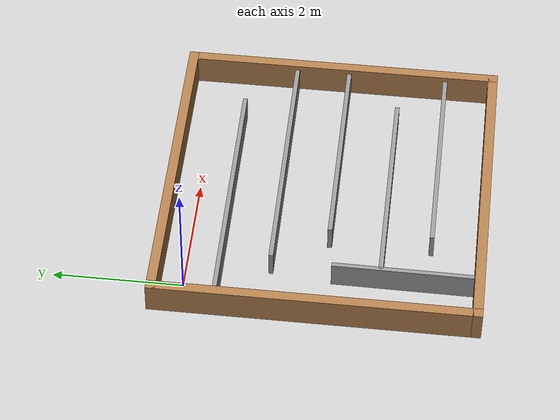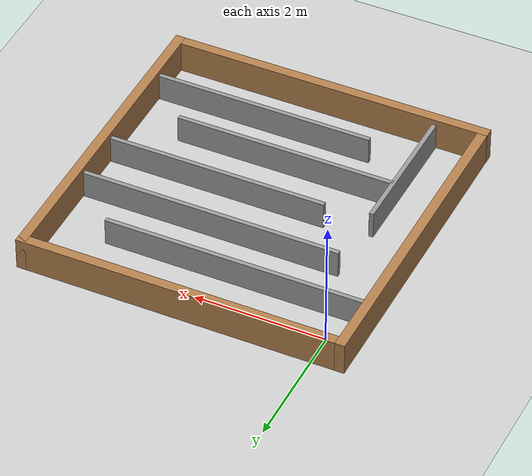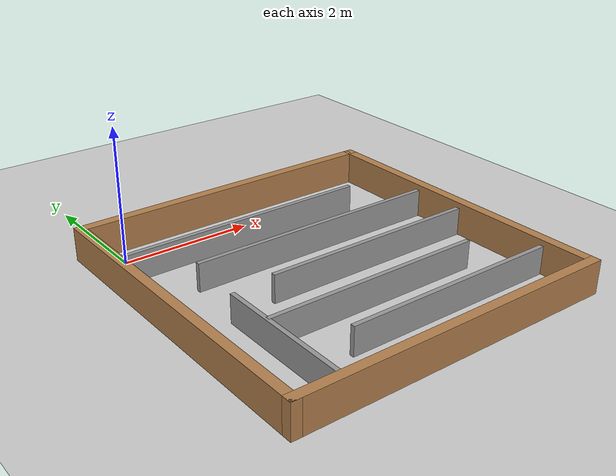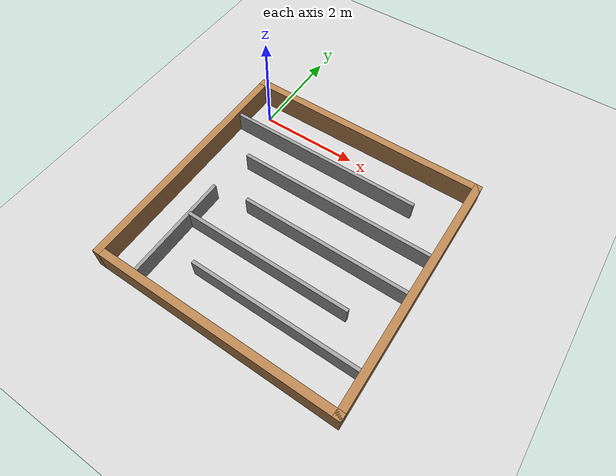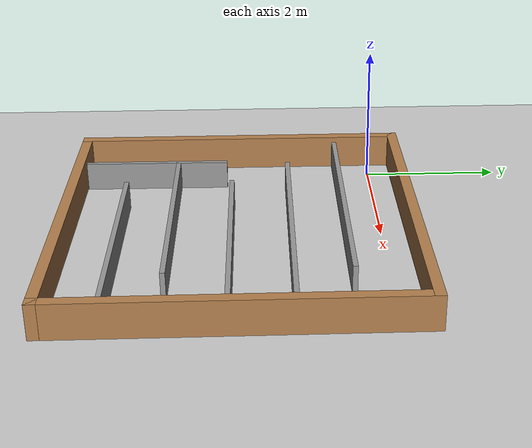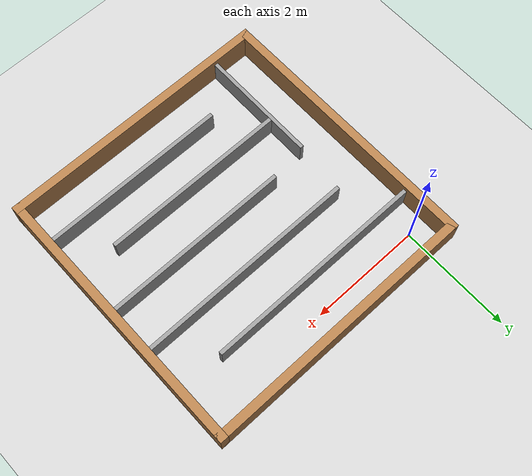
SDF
<sdf version="1.7">
 <world name="default">
  <model name="ground_plane">
   <static>1</static>
   <link name="link">
    <collision name="collision">
     <geometry><plane><normal>0 0 1</normal><size>100 100</size></plane></geometry>
     <surface><friction><ode><mu>100</mu><mu2>50</mu2></ode></friction></surface>
    </collision>
    <visual name="visual">
     <cast_shadows>0</cast_shadows>
     <geometry><plane><normal>0 0 1</normal><size>100 100</size></plane></geometry>
     <material>
      <script><uri>file://media/materials/scripts/gazebo.material</uri><name>Gazebo/Grey</name></script>
     </material>
    </visual>
   </link>
  </model>
  <light name="sun" type="directional">
   <pose>0 0 10 0 -0 0</pose>
   <diffuse>0.8 0.8 0.8 1</diffuse>
   <specular>0.2 0.2 0.2 1</specular>
   <attenuation>
    <range>1000</range>
    <constant>0.9</constant>
    <linear>0.01</linear>
    <quadratic>0.001</quadratic>
   </attenuation>
   <direction>-0.5 0.1 -0.9</direction>
   <spot><inner_angle>0</inner_angle><outer_angle>0</outer_angle><falloff>0</falloff></spot>
  </light>
  <scene><shadows>0</shadows><ambient>0.4 0.4 0.4 1</ambient><background>0.7 0.7 0.7 1</background></scene>
  <physics type="ode">
   <real_time_update_rate>1000</real_time_update_rate>
   <max_step_size>0.001</max_step_size>
   <real_time_factor>1</real_time_factor>
   <ode>
    <solver>
     <type>quick</type>
     <iters>150</iters>
     <precon_iters>0</precon_iters>
     <sor>1.4</sor>
     <use_dynamic_moi_rescaling>1</use_dynamic_moi_rescaling>
    </solver>
    <constraints>
     <cfm>1e-05</cfm>
     <erp>0.2</erp>
     <contact_max_correcting_vel>2000</contact_max_correcting_vel>
     <contact_surface_layer>0.01</contact_surface_layer>
    </constraints>
   </ode>
  </physics>
  <gravity>0 0 -9.8</gravity>
  <magnetic_field>6e-06 2.3e-05 -4.2e-05</magnetic_field>
  <atmosphere type="adiabatic"/>
  <audio><device>default</device></audio>
  <spherical_coordinates>
   <surface_model>EARTH_WGS84</surface_model>
   <latitude_deg>0</latitude_deg>
   <longitude_deg>0</longitude_deg>
   <elevation>0</elevation>
   <heading_deg>0</heading_deg>
  </spherical_coordinates>
  <model name="turtlebot3_square">
   <pose>2 -2 0 0 -0 0</pose>
   <link name="Wall_1">
    <collision name="Wall_1_Collision">
     <geometry><box><size>5 0.15 0.5</size></box></geometry>
     <pose>0 0 0.25 0 -0 0</pose>
    </collision>
    <visual name="Wall_1_Visual">
     <pose>0 0 0.25 0 -0 0</pose>
     <geometry><box><size>5 0.15 0.5</size></box></geometry>
     <material>
      <script><uri>file://media/materials/scripts/gazebo.material</uri><name>Gazebo/Wood</name></script>
      <ambient>1 1 1 1</ambient>
     </material>
    </visual>
    <pose>-2.425 0 0 0 -0 1.5708</pose>
   </link>
   <link name="Wall_2">
    <collision name="Wall_2_Collision">
     <geometry><box><size>5 0.15 0.5</size></box></geometry>
     <pose>0 0 0.25 0 -0 0</pose>
    </collision>
    <visual name="Wall_2_Visual">
     <pose>0 0 0.25 0 -0 0</pose>
     <geometry><box><size>5 0.15 0.5</size></box></geometry>
     <material>
      <script><uri>file://media/materials/scripts/gazebo.material</uri><name>Gazebo/Wood</name></script>
      <ambient>1 1 1 1</ambient>
     </material>
    </visual>
    <pose>0 2.425 0 0 -0 0</pose>
   </link>
   <link name="Wall_3">
    <collision name="Wall_3_Collision">
     <geometry><box><size>5 0.15 0.5</size></box></geometry>
     <pose>0 0 0.25 0 -0 0</pose>
    </collision>
    <visual name="Wall_3_Visual">
     <pose>0 0 0.25 0 -0 0</pose>
     <geometry><box><size>5 0.15 0.5</size></box></geometry>
     <material>
      <script><uri>file://media/materials/scripts/gazebo.material</uri><name>Gazebo/Wood</name></script>
      <ambient>1 1 1 1</ambient>
     </material>
    </visual>
    <pose>2.425 0 0 0 0 -1.5708</pose>
   </link>
   <link name="Wall_4">
    <collision name="Wall_4_Collision">
     <geometry><box><size>5 0.15 0.5</size></box></geometry>
     <pose>0 0 0.25 0 -0 0</pose>
    </collision>
    <visual name="Wall_4_Visual">
     <pose>0 0 0.25 0 -0 0</pose>
     <geometry><box><size>5 0.15 0.5</size></box></geometry>
     <material>
      <script><uri>file://media/materials/scripts/gazebo.material</uri><name>Gazebo/Wood</name></script>
      <ambient>1 1 1 1</ambient>
     </material>
    </visual>
    <pose>0 -2.425 0 0 -0 3.14159</pose>
   </link>
   <static>1</static>
  </model>
  <model name="unit_box">
   <pose>1.63084 -0.5103 0.2 0 -0 0</pose>
   <link name="link">
    <inertial>
     <mass>1</mass>
     <inertia>
      <ixx>0.166667</ixx>
      <ixy>0</ixy>
      <ixz>0</ixz>
      <iyy>0.166667</iyy>
      <iyz>0</iyz>
      <izz>0.166667</izz>
     </inertia>
    </inertial>
    <collision name="collision">
     <geometry><box><size>3.97499 0.0689597 0.431368</size></box></geometry>
    </collision>
    <visual name="visual">
     <geometry><box><size>3.97499 0.0689597 0.431368</size></box></geometry>
     <material>
      <script><name>Gazebo/Grey</name><uri>file://media/materials/scripts/gazebo.material</uri></script>
     </material>
    </visual>
   </link>
  </model>
  <model name="unit_box_clone">
   <pose>2.38523 -1.27844 0.2 0 -0 0</pose>
   <link name="link">
    <inertial>
     <mass>1</mass>
     <inertia>
      <ixx>0.166667</ixx>
      <ixy>0</ixy>
      <ixz>0</ixz>
      <iyy>0.166667</iyy>
      <iyz>0</iyz>
      <izz>0.166667</izz>
     </inertia>
    </inertial>
    <collision name="collision"><geometry><box><size>3.97499 0.068959 0.431368</size></box></geometry></collision>
    <visual name="visual">
     <geometry><box><size>3.97499 0.068959 0.431368</size></box></geometry>
     <material>
      <script><name>Gazebo/Grey</name><uri>file://media/materials/scripts/gazebo.material</uri></script>
     </material>
    </visual>
   </link>
  </model>
  <model name="unit_box_clone_0">
   <pose>0.321829 -3.27355 0.2 0 0 -1.578</pose>
   <link name="link">
    <inertial>
     <mass>1</mass>
     <inertia>
      <ixx>0.166667</ixx>
      <ixy>0</ixy>
      <ixz>0</ixz>
      <iyy>0.166667</iyy>
      <iyz>0</iyz>
      <izz>0.166667</izz>
     </inertia>
    </inertial>
    <collision name="collision"><geometry><box><size>2.14316 0.068959 0.431368</size></box></geometry></collision>
    <visual name="visual">
     <geometry><box><size>2.14316 0.068959 0.431368</size></box></geometry>
     <material>
      <script><name>Gazebo/Grey</name><uri>file://media/materials/scripts/gazebo.material</uri></script>
     </material>
    </visual>
   </link>
  </model>
  <model name="unit_box_clone_clone">
   <pose>2.6892 -2.11539 0.2 0 -0 0</pose>
   <link name="link">
    <inertial>
     <mass>1</mass>
     <inertia>
      <ixx>0.166667</ixx>
      <ixy>0</ixy>
      <ixz>0</ixz>
      <iyy>0.166667</iyy>
      <iyz>0</iyz>
      <izz>0.166667</izz>
     </inertia>
    </inertial>
    <collision name="collision"><geometry><box><size>3.3635 0.068959 0.431368</size></box></geometry></collision>
    <visual name="visual">
     <geometry><box><size>3.3635 0.068959 0.431368</size></box></geometry>
     <material>
      <script><name>Gazebo/Grey</name><uri>file://media/materials/scripts/gazebo.material</uri></script>
     </material>
    </visual>
   </link>
  </model>
  <model name="unit_box_clone_clone_clone">
   <pose>2.00941 -2.94085 0.2 0 -0 0</pose>
   <link name="link">
    <inertial>
     <mass>1</mass>
     <inertia>
      <ixx>0.166667</ixx>
      <ixy>0</ixy>
      <ixz>0</ixz>
      <iyy>0.166667</iyy>
      <iyz>0</iyz>
      <izz>0.166667</izz>
     </inertia>
    </inertial>
    <collision name="collision"><geometry><box><size>3.3635 0.068959 0.431368</size></box></geometry></collision>
    <visual name="visual">
     <geometry><box><size>3.3635 0.068959 0.431368</size></box></geometry>
     <material>
      <script><name>Gazebo/Grey</name><uri>file://media/materials/scripts/gazebo.material</uri></script>
     </material>
    </visual>
   </link>
  </model>
  <model name="unit_box_clone_clone_clone_0">
   <pose>2.69773 -3.66557 0.2 0 -0 0</pose>
   <link name="link">
    <inertial>
     <mass>1</mass>
     <inertia>
      <ixx>0.166667</ixx>
      <ixy>0</ixy>
      <ixz>0</ixz>
      <iyy>0.166667</iyy>
      <iyz>0</iyz>
      <izz>0.166667</izz>
     </inertia>
    </inertial>
    <collision name="collision"><geometry><box><size>3.3635 0.068959 0.431368</size></box></geometry></collision>
    <visual name="visual">
     <geometry><box><size>3.3635 0.068959 0.431368</size></box></geometry>
     <material>
      <script><name>Gazebo/Grey</name><uri>file://media/materials/scripts/gazebo.material</uri></script>
     </material>
    </visual>
   </link>
  </model>
 </world>
</sdf>
